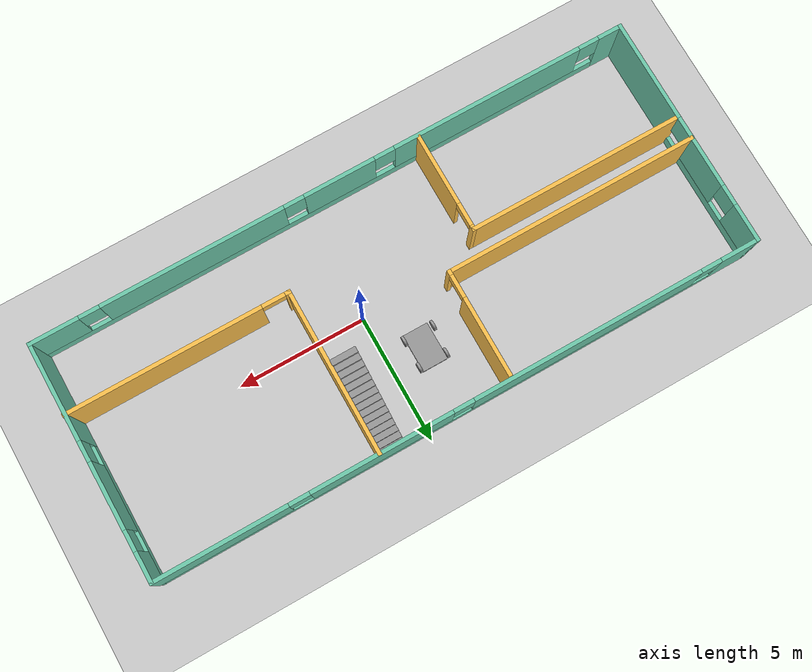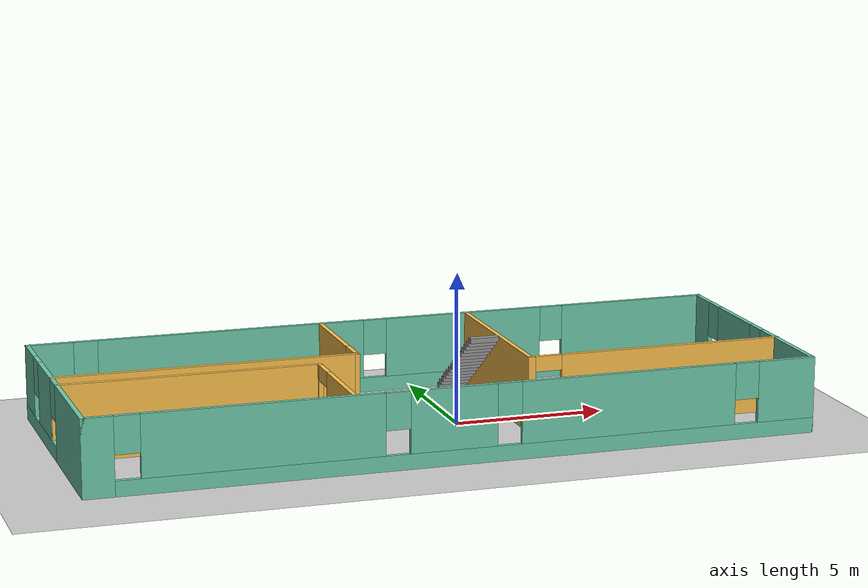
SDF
<sdf version="1.6">
 <world name="default">
  <model name="ground_plane">
   <static>1</static>
   <link name="link">
    <collision name="collision">
     <geometry><plane><normal>0 0 1</normal><size>100 100</size></plane></geometry>
     <surface>
      <contact><collide_bitmask>65535</collide_bitmask></contact>
      <friction><ode><mu>100</mu><mu2>50</mu2></ode></friction>
     </surface>
    </collision>
    <visual name="visual">
     <cast_shadows>0</cast_shadows>
     <geometry><plane><normal>0 0 1</normal><size>100 100</size></plane></geometry>
     <material>
      <script><uri>file://media/materials/scripts/gazebo.material</uri><name>Gazebo/Grey</name></script>
     </material>
    </visual>
   </link>
  </model>
  <model name="threeRooms">
   <pose>-1.29655 0.158694 0 0 -0 0</pose>
   <link name="Stairs_1">
    <visual name="Stairs_1_Visual_0">
     <pose>2.65595 4.34252 0.083333 0 -0 0</pose>
     <geometry><box><size>1 0.233333 0.166667</size></box></geometry>
     <material>
      <script><uri>file://media/materials/scripts/gazebo.material</uri><name>Gazebo/Grey</name></script>
      <ambient>1 1 1 1</ambient>
     </material>
     <meta><layer>0</layer></meta>
    </visual>
    <collision name="Stairs_1_Collision_0">
     <geometry><box><size>1 0.233333 0.166667</size></box></geometry>
     <pose>2.65595 4.34252 0.083333 0 -0 0</pose>
    </collision>
    <visual name="Stairs_1_Visual_1">
     <pose>2.65595 4.10918 0.25 0 -0 0</pose>
     <geometry><box><size>1 0.233333 0.166667</size></box></geometry>
     <material>
      <script><uri>file://media/materials/scripts/gazebo.material</uri><name>Gazebo/Grey</name></script>
      <ambient>1 1 1 1</ambient>
     </material>
     <meta><layer>0</layer></meta>
    </visual>
    <collision name="Stairs_1_Collision_1">
     <geometry><box><size>1 0.233333 0.166667</size></box></geometry>
     <pose>2.65595 4.10918 0.25 0 -0 0</pose>
    </collision>
    <visual name="Stairs_1_Visual_2">
     <pose>2.65595 3.87585 0.416667 0 -0 0</pose>
     <geometry><box><size>1 0.233333 0.166667</size></box></geometry>
     <material>
      <script><uri>file://media/materials/scripts/gazebo.material</uri><name>Gazebo/Grey</name></script>
      <ambient>1 1 1 1</ambient>
     </material>
     <meta><layer>0</layer></meta>
    </visual>
    <collision name="Stairs_1_Collision_2">
     <geometry><box><size>1 0.233333 0.166667</size></box></geometry>
     <pose>2.65595 3.87585 0.416667 0 -0 0</pose>
    </collision>
    <visual name="Stairs_1_Visual_3">
     <pose>2.65595 3.64252 0.583333 0 -0 0</pose>
     <geometry><box><size>1 0.233333 0.166667</size></box></geometry>
     <material>
      <script><uri>file://media/materials/scripts/gazebo.material</uri><name>Gazebo/Grey</name></script>
      <ambient>1 1 1 1</ambient>
     </material>
     <meta><layer>0</layer></meta>
    </visual>
    <collision name="Stairs_1_Collision_3">
     <geometry><box><size>1 0.233333 0.166667</size></box></geometry>
     <pose>2.65595 3.64252 0.583333 0 -0 0</pose>
    </collision>
    <visual name="Stairs_1_Visual_4">
     <pose>2.65595 3.40918 0.75 0 -0 0</pose>
     <geometry><box><size>1 0.233333 0.166667</size></box></geometry>
     <material>
      <script><uri>file://media/materials/scripts/gazebo.material</uri><name>Gazebo/Grey</name></script>
      <ambient>1 1 1 1</ambient>
     </material>
     <meta><layer>0</layer></meta>
    </visual>
    <collision name="Stairs_1_Collision_4">
     <geometry><box><size>1 0.233333 0.166667</size></box></geometry>
     <pose>2.65595 3.40918 0.75 0 -0 0</pose>
    </collision>
    <visual name="Stairs_1_Visual_5">
     <pose>2.65595 3.17585 0.916667 0 -0 0</pose>
     <geometry><box><size>1 0.233333 0.166667</size></box></geometry>
     <material>
      <script><uri>file://media/materials/scripts/gazebo.material</uri><name>Gazebo/Grey</name></script>
      <ambient>1 1 1 1</ambient>
     </material>
     <meta><layer>0</layer></meta>
    </visual>
    <collision name="Stairs_1_Collision_5">
     <geometry><box><size>1 0.233333 0.166667</size></box></geometry>
     <pose>2.65595 3.17585 0.916667 0 -0 0</pose>
    </collision>
    <visual name="Stairs_1_Visual_6">
     <pose>2.65595 2.94252 1.08333 0 -0 0</pose>
     <geometry><box><size>1 0.233333 0.166667</size></box></geometry>
     <material>
      <script><uri>file://media/materials/scripts/gazebo.material</uri><name>Gazebo/Grey</name></script>
      <ambient>1 1 1 1</ambient>
     </material>
     <meta><layer>0</layer></meta>
    </visual>
    <collision name="Stairs_1_Collision_6">
     <geometry><box><size>1 0.233333 0.166667</size></box></geometry>
     <pose>2.65595 2.94252 1.08333 0 -0 0</pose>
    </collision>
    <visual name="Stairs_1_Visual_7">
     <pose>2.65595 2.70918 1.25 0 -0 0</pose>
     <geometry><box><size>1 0.233333 0.166667</size></box></geometry>
     <material>
      <script><uri>file://media/materials/scripts/gazebo.material</uri><name>Gazebo/Grey</name></script>
      <ambient>1 1 1 1</ambient>
     </material>
     <meta><layer>0</layer></meta>
    </visual>
    <collision name="Stairs_1_Collision_7">
     <geometry><box><size>1 0.233333 0.166667</size></box></geometry>
     <pose>2.65595 2.70918 1.25 0 -0 0</pose>
    </collision>
    <visual name="Stairs_1_Visual_8">
     <pose>2.65595 2.47585 1.41667 0 -0 0</pose>
     <geometry><box><size>1 0.233333 0.166667</size></box></geometry>
     <material>
      <script><uri>file://media/materials/scripts/gazebo.material</uri><name>Gazebo/Grey</name></script>
      <ambient>1 1 1 1</ambient>
     </material>
     <meta><layer>0</layer></meta>
    </visual>
    <collision name="Stairs_1_Collision_8">
     <geometry><box><size>1 0.233333 0.166667</size></box></geometry>
     <pose>2.65595 2.47585 1.41667 0 -0 0</pose>
    </collision>
    <visual name="Stairs_1_Visual_9">
     <pose>2.65595 2.24252 1.58333 0 -0 0</pose>
     <geometry><box><size>1 0.233333 0.166667</size></box></geometry>
     <material>
      <script><uri>file://media/materials/scripts/gazebo.material</uri><name>Gazebo/Grey</name></script>
      <ambient>1 1 1 1</ambient>
     </material>
     <meta><layer>0</layer></meta>
    </visual>
    <collision name="Stairs_1_Collision_9">
     <geometry><box><size>1 0.233333 0.166667</size></box></geometry>
     <pose>2.65595 2.24252 1.58333 0 -0 0</pose>
    </collision>
    <visual name="Stairs_1_Visual_10">
     <pose>2.65595 2.00918 1.75 0 -0 0</pose>
     <geometry><box><size>1 0.233333 0.166667</size></box></geometry>
     <material>
      <script><uri>file://media/materials/scripts/gazebo.material</uri><name>Gazebo/Grey</name></script>
      <ambient>1 1 1 1</ambient>
     </material>
     <meta><layer>0</layer></meta>
    </visual>
    <collision name="Stairs_1_Collision_10">
     <geometry><box><size>1 0.233333 0.166667</size></box></geometry>
     <pose>2.65595 2.00918 1.75 0 -0 0</pose>
    </collision>
    <visual name="Stairs_1_Visual_11">
     <pose>2.65595 1.77585 1.91667 0 -0 0</pose>
     <geometry><box><size>1 0.233333 0.166667</size></box></geometry>
     <material>
      <script><uri>file://media/materials/scripts/gazebo.material</uri><name>Gazebo/Grey</name></script>
      <ambient>1 1 1 1</ambient>
     </material>
     <meta><layer>0</layer></meta>
    </visual>
    <collision name="Stairs_1_Collision_11">
     <geometry><box><size>1 0.233333 0.166667</size></box></geometry>
     <pose>2.65595 1.77585 1.91667 0 -0 0</pose>
    </collision>
    <visual name="Stairs_1_Visual_12">
     <pose>2.65595 1.54252 2.08333 0 -0 0</pose>
     <geometry><box><size>1 0.233333 0.166667</size></box></geometry>
     <material>
      <script><uri>file://media/materials/scripts/gazebo.material</uri><name>Gazebo/Grey</name></script>
      <ambient>1 1 1 1</ambient>
     </material>
     <meta><layer>0</layer></meta>
    </visual>
    <collision name="Stairs_1_Collision_12">
     <geometry><box><size>1 0.233333 0.166667</size></box></geometry>
     <pose>2.65595 1.54252 2.08333 0 -0 0</pose>
    </collision>
    <visual name="Stairs_1_Visual_13">
     <pose>2.65595 1.30918 2.25 0 -0 0</pose>
     <geometry><box><size>1 0.233333 0.166667</size></box></geometry>
     <material>
      <script><uri>file://media/materials/scripts/gazebo.material</uri><name>Gazebo/Grey</name></script>
      <ambient>1 1 1 1</ambient>
     </material>
     <meta><layer>0</layer></meta>
    </visual>
    <collision name="Stairs_1_Collision_13">
     <geometry><box><size>1 0.233333 0.166667</size></box></geometry>
     <pose>2.65595 1.30918 2.25 0 -0 0</pose>
    </collision>
    <visual name="Stairs_1_Visual_14">
     <pose>2.65595 1.07585 2.41667 0 -0 0</pose>
     <geometry><box><size>1 0.233333 0.166667</size></box></geometry>
     <material>
      <script><uri>file://media/materials/scripts/gazebo.material</uri><name>Gazebo/Grey</name></script>
      <ambient>1 1 1 1</ambient>
     </material>
     <meta><layer>0</layer></meta>
    </visual>
    <collision name="Stairs_1_Collision_14">
     <geometry><box><size>1 0.233333 0.166667</size></box></geometry>
     <pose>2.65595 1.07585 2.41667 0 -0 0</pose>
    </collision>
   </link>
   <link name="Wall_40">
    <pose>-0.014556 -4.55 0 0 -0 0</pose>
    <visual name="Wall_40_Visual_0">
     <pose>-11.3725 0 1.25 0 -0 0</pose>
     <geometry><box><size>1.00501 0.15 2.5</size></box></geometry>
     <material>
      <script><uri>file://media/materials/scripts/gazebo.material</uri><name>Gazebo/Grey</name></script>
      <ambient>0.435294 0.796078 0.67451 1</ambient>
     </material>
     <meta><layer>0</layer></meta>
    </visual>
    <collision name="Wall_40_Collision_0">
     <geometry><box><size>1.00501 0.15 2.5</size></box></geometry>
     <pose>-11.3725 0 1.25 0 -0 0</pose>
    </collision>
    <visual name="Wall_40_Visual_1">
     <pose>0.502505 0 0.25 0 -0 0</pose>
     <geometry><box><size>22.745 0.15 0.5</size></box></geometry>
     <material>
      <script><uri>file://media/materials/scripts/gazebo.material</uri><name>Gazebo/Grey</name></script>
      <ambient>0.435294 0.796078 0.67451 1</ambient>
     </material>
     <meta><layer>0</layer></meta>
    </visual>
    <collision name="Wall_40_Collision_1">
     <geometry><box><size>22.745 0.15 0.5</size></box></geometry>
     <pose>0.502505 0 0.25 0 -0 0</pose>
    </collision>
    <visual name="Wall_40_Visual_2">
     <pose>-6.26716 0 1.5 0 -0 0</pose>
     <geometry><box><size>7.60566 0.15 2</size></box></geometry>
     <material>
      <script><uri>file://media/materials/scripts/gazebo.material</uri><name>Gazebo/Grey</name></script>
      <ambient>0.435294 0.796078 0.67451 1</ambient>
     </material>
     <meta><layer>0</layer></meta>
    </visual>
    <collision name="Wall_40_Collision_2">
     <geometry><box><size>7.60566 0.15 2</size></box></geometry>
     <pose>-6.26716 0 1.5 0 -0 0</pose>
    </collision>
    <visual name="Wall_40_Visual_3">
     <pose>-0.255514 0 1.5 0 -0 0</pose>
     <geometry><box><size>2.81763 0.15 2</size></box></geometry>
     <material>
      <script><uri>file://media/materials/scripts/gazebo.material</uri><name>Gazebo/Grey</name></script>
      <ambient>0.435294 0.796078 0.67451 1</ambient>
     </material>
     <meta><layer>0</layer></meta>
    </visual>
    <collision name="Wall_40_Collision_3">
     <geometry><box><size>2.81763 0.15 2</size></box></geometry>
     <pose>-0.255514 0 1.5 0 -0 0</pose>
    </collision>
    <visual name="Wall_40_Visual_4">
     <pose>5.54333 0 1.5 0 -0 0</pose>
     <geometry><box><size>7.18006 0.15 2</size></box></geometry>
     <material>
      <script><uri>file://media/materials/scripts/gazebo.material</uri><name>Gazebo/Grey</name></script>
      <ambient>0.435294 0.796078 0.67451 1</ambient>
     </material>
     <meta><layer>0</layer></meta>
    </visual>
    <collision name="Wall_40_Collision_4">
     <geometry><box><size>7.18006 0.15 2</size></box></geometry>
     <pose>5.54333 0 1.5 0 -0 0</pose>
    </collision>
    <visual name="Wall_40_Visual_5">
     <pose>10.9042 0 1.5 0 -0 0</pose>
     <geometry><box><size>1.94164 0.15 2</size></box></geometry>
     <material>
      <script><uri>file://media/materials/scripts/gazebo.material</uri><name>Gazebo/Grey</name></script>
      <ambient>0.435294 0.796078 0.67451 1</ambient>
     </material>
     <meta><layer>0</layer></meta>
    </visual>
    <collision name="Wall_40_Collision_5">
     <geometry><box><size>1.94164 0.15 2</size></box></geometry>
     <pose>10.9042 0 1.5 0 -0 0</pose>
    </collision>
    <visual name="Wall_40_Visual_6">
     <pose>-10.47 0 1.9 0 -0 0</pose>
     <geometry><box><size>0.8 0.15 1.2</size></box></geometry>
     <material>
      <script><uri>file://media/materials/scripts/gazebo.material</uri><name>Gazebo/Grey</name></script>
      <ambient>0.435294 0.796078 0.67451 1</ambient>
     </material>
     <meta><layer>0</layer></meta>
    </visual>
    <collision name="Wall_40_Collision_6">
     <geometry><box><size>0.8 0.15 1.2</size></box></geometry>
     <pose>-10.47 0 1.9 0 -0 0</pose>
    </collision>
    <visual name="Wall_40_Visual_7">
     <pose>-2.06433 0 1.9 0 -0 0</pose>
     <geometry><box><size>0.8 0.15 1.2</size></box></geometry>
     <material>
      <script><uri>file://media/materials/scripts/gazebo.material</uri><name>Gazebo/Grey</name></script>
      <ambient>0.435294 0.796078 0.67451 1</ambient>
     </material>
     <meta><layer>0</layer></meta>
    </visual>
    <collision name="Wall_40_Collision_7">
     <geometry><box><size>0.8 0.15 1.2</size></box></geometry>
     <pose>-2.06433 0 1.9 0 -0 0</pose>
    </collision>
    <visual name="Wall_40_Visual_8">
     <pose>1.5533 0 1.9 0 -0 0</pose>
     <geometry><box><size>0.8 0.15 1.2</size></box></geometry>
     <material>
      <script><uri>file://media/materials/scripts/gazebo.material</uri><name>Gazebo/Grey</name></script>
      <ambient>0.435294 0.796078 0.67451 1</ambient>
     </material>
     <meta><layer>0</layer></meta>
    </visual>
    <collision name="Wall_40_Collision_8">
     <geometry><box><size>0.8 0.15 1.2</size></box></geometry>
     <pose>1.5533 0 1.9 0 -0 0</pose>
    </collision>
    <visual name="Wall_40_Visual_9">
     <pose>9.53336 0 1.9 0 -0 0</pose>
     <geometry><box><size>0.8 0.15 1.2</size></box></geometry>
     <material>
      <script><uri>file://media/materials/scripts/gazebo.material</uri><name>Gazebo/Grey</name></script>
      <ambient>0.435294 0.796078 0.67451 1</ambient>
     </material>
     <meta><layer>0</layer></meta>
    </visual>
    <collision name="Wall_40_Collision_9">
     <geometry><box><size>0.8 0.15 1.2</size></box></geometry>
     <pose>9.53336 0 1.9 0 -0 0</pose>
    </collision>
   </link>
   <link name="Wall_41">
    <pose>11.7854 -0 0 0 -0 1.5708</pose>
    <visual name="Wall_41_Visual_0">
     <pose>-2.70072 0 1.25 0 -0 0</pose>
     <geometry><box><size>3.84856 0.15 2.5</size></box></geometry>
     <material>
      <script><uri>file://media/materials/scripts/gazebo.material</uri><name>Gazebo/Grey</name></script>
      <ambient>0.435294 0.796078 0.67451 1</ambient>
     </material>
     <meta><layer>0</layer></meta>
    </visual>
    <collision name="Wall_41_Collision_0">
     <geometry><box><size>3.84856 0.15 2.5</size></box></geometry>
     <pose>-2.70072 0 1.25 0 -0 0</pose>
    </collision>
    <visual name="Wall_41_Visual_1">
     <pose>1.92428 0 0.25 0 -0 0</pose>
     <geometry><box><size>5.40144 0.15 0.5</size></box></geometry>
     <material>
      <script><uri>file://media/materials/scripts/gazebo.material</uri><name>Gazebo/Grey</name></script>
      <ambient>0.435294 0.796078 0.67451 1</ambient>
     </material>
     <meta><layer>0</layer></meta>
    </visual>
    <collision name="Wall_41_Collision_1">
     <geometry><box><size>5.40144 0.15 0.5</size></box></geometry>
     <pose>1.92428 0 0.25 0 -0 0</pose>
    </collision>
    <visual name="Wall_41_Visual_2">
     <pose>1.31267 0 1.5 0 -0 0</pose>
     <geometry><box><size>2.57823 0.15 2</size></box></geometry>
     <material>
      <script><uri>file://media/materials/scripts/gazebo.material</uri><name>Gazebo/Grey</name></script>
      <ambient>0.435294 0.796078 0.67451 1</ambient>
     </material>
     <meta><layer>0</layer></meta>
    </visual>
    <collision name="Wall_41_Collision_2">
     <geometry><box><size>2.57823 0.15 2</size></box></geometry>
     <pose>1.31267 0 1.5 0 -0 0</pose>
    </collision>
    <visual name="Wall_41_Visual_3">
     <pose>4.01339 0 1.5 0 -0 0</pose>
     <geometry><box><size>1.22321 0.15 2</size></box></geometry>
     <material>
      <script><uri>file://media/materials/scripts/gazebo.material</uri><name>Gazebo/Grey</name></script>
      <ambient>0.435294 0.796078 0.67451 1</ambient>
     </material>
     <meta><layer>0</layer></meta>
    </visual>
    <collision name="Wall_41_Collision_3">
     <geometry><box><size>1.22321 0.15 2</size></box></geometry>
     <pose>4.01339 0 1.5 0 -0 0</pose>
    </collision>
    <visual name="Wall_41_Visual_4">
     <pose>-0.376441 0 1.9 0 -0 0</pose>
     <geometry><box><size>0.8 0.15 1.2</size></box></geometry>
     <material>
      <script><uri>file://media/materials/scripts/gazebo.material</uri><name>Gazebo/Grey</name></script>
      <ambient>0.435294 0.796078 0.67451 1</ambient>
     </material>
     <meta><layer>0</layer></meta>
    </visual>
    <collision name="Wall_41_Collision_4">
     <geometry><box><size>0.8 0.15 1.2</size></box></geometry>
     <pose>-0.376441 0 1.9 0 -0 0</pose>
    </collision>
    <visual name="Wall_41_Visual_5">
     <pose>3.00178 0 1.9 0 -0 0</pose>
     <geometry><box><size>0.8 0.15 1.2</size></box></geometry>
     <material>
      <script><uri>file://media/materials/scripts/gazebo.material</uri><name>Gazebo/Grey</name></script>
      <ambient>0.435294 0.796078 0.67451 1</ambient>
     </material>
     <meta><layer>0</layer></meta>
    </visual>
    <collision name="Wall_41_Collision_5">
     <geometry><box><size>0.8 0.15 1.2</size></box></geometry>
     <pose>3.00178 0 1.9 0 -0 0</pose>
    </collision>
   </link>
   <link name="Wall_44">
    <pose>-11.8146 -0 0 0 -0 1.5708</pose>
    <visual name="Wall_44_Visual_0">
     <pose>-2.59432 0 1.25 0 -0 0</pose>
     <geometry><box><size>4.06136 0.15 2.5</size></box></geometry>
     <material>
      <script><uri>file://media/materials/scripts/gazebo.material</uri><name>Gazebo/Grey</name></script>
      <ambient>0.435294 0.796078 0.67451 1</ambient>
     </material>
     <meta><layer>0</layer></meta>
    </visual>
    <collision name="Wall_44_Collision_0">
     <geometry><box><size>4.06136 0.15 2.5</size></box></geometry>
     <pose>-2.59432 0 1.25 0 -0 0</pose>
    </collision>
    <visual name="Wall_44_Visual_1">
     <pose>2.03068 0 0.25 0 -0 0</pose>
     <geometry><box><size>5.18864 0.15 0.5</size></box></geometry>
     <material>
      <script><uri>file://media/materials/scripts/gazebo.material</uri><name>Gazebo/Grey</name></script>
      <ambient>0.435294 0.796078 0.67451 1</ambient>
     </material>
     <meta><layer>0</layer></meta>
    </visual>
    <collision name="Wall_44_Collision_1">
     <geometry><box><size>5.18864 0.15 0.5</size></box></geometry>
     <pose>2.03068 0 0.25 0 -0 0</pose>
    </collision>
    <visual name="Wall_44_Visual_2">
     <pose>1.27277 0 1.5 0 -0 0</pose>
     <geometry><box><size>2.07282 0.15 2</size></box></geometry>
     <material>
      <script><uri>file://media/materials/scripts/gazebo.material</uri><name>Gazebo/Grey</name></script>
      <ambient>0.435294 0.796078 0.67451 1</ambient>
     </material>
     <meta><layer>0</layer></meta>
    </visual>
    <collision name="Wall_44_Collision_2">
     <geometry><box><size>2.07282 0.15 2</size></box></geometry>
     <pose>1.27277 0 1.5 0 -0 0</pose>
    </collision>
    <visual name="Wall_44_Visual_3">
     <pose>3.86709 0 1.5 0 -0 0</pose>
     <geometry><box><size>1.51582 0.15 2</size></box></geometry>
     <material>
      <script><uri>file://media/materials/scripts/gazebo.material</uri><name>Gazebo/Grey</name></script>
      <ambient>0.435294 0.796078 0.67451 1</ambient>
     </material>
     <meta><layer>0</layer></meta>
    </visual>
    <collision name="Wall_44_Collision_3">
     <geometry><box><size>1.51582 0.15 2</size></box></geometry>
     <pose>3.86709 0 1.5 0 -0 0</pose>
    </collision>
    <visual name="Wall_44_Visual_4">
     <pose>-0.163639 0 1.9 0 -0 0</pose>
     <geometry><box><size>0.8 0.15 1.2</size></box></geometry>
     <material>
      <script><uri>file://media/materials/scripts/gazebo.material</uri><name>Gazebo/Grey</name></script>
      <ambient>0.435294 0.796078 0.67451 1</ambient>
     </material>
     <meta><layer>0</layer></meta>
    </visual>
    <collision name="Wall_44_Collision_4">
     <geometry><box><size>0.8 0.15 1.2</size></box></geometry>
     <pose>-0.163639 0 1.9 0 -0 0</pose>
    </collision>
    <visual name="Wall_44_Visual_5">
     <pose>2.70918 0 1.9 0 -0 0</pose>
     <geometry><box><size>0.8 0.15 1.2</size></box></geometry>
     <material>
      <script><uri>file://media/materials/scripts/gazebo.material</uri><name>Gazebo/Grey</name></script>
      <ambient>0.435294 0.796078 0.67451 1</ambient>
     </material>
     <meta><layer>0</layer></meta>
    </visual>
    <collision name="Wall_44_Collision_5">
     <geometry><box><size>0.8 0.15 1.2</size></box></geometry>
     <pose>2.70918 0 1.9 0 -0 0</pose>
    </collision>
   </link>
   <link name="Wall_45">
    <pose>-0.014556 4.55 0 0 -0 0</pose>
    <visual name="Wall_45_Visual_0">
     <pose>-11.0932 0 1.25 0 -0 0</pose>
     <geometry><box><size>1.56361 0.15 2.5</size></box></geometry>
     <material>
      <script><uri>file://media/materials/scripts/gazebo.material</uri><name>Gazebo/Grey</name></script>
      <ambient>0.435294 0.796078 0.67451 1</ambient>
     </material>
     <meta><layer>0</layer></meta>
    </visual>
    <collision name="Wall_45_Collision_0">
     <geometry><box><size>1.56361 0.15 2.5</size></box></geometry>
     <pose>-11.0932 0 1.25 0 -0 0</pose>
    </collision>
    <visual name="Wall_45_Visual_1">
     <pose>0.781807 0 0.25 0 -0 0</pose>
     <geometry><box><size>22.1864 0.15 0.5</size></box></geometry>
     <material>
      <script><uri>file://media/materials/scripts/gazebo.material</uri><name>Gazebo/Grey</name></script>
      <ambient>0.435294 0.796078 0.67451 1</ambient>
     </material>
     <meta><layer>0</layer></meta>
    </visual>
    <collision name="Wall_45_Collision_1">
     <geometry><box><size>22.1864 0.15 0.5</size></box></geometry>
     <pose>0.781807 0 0.25 0 -0 0</pose>
    </collision>
    <visual name="Wall_45_Visual_2">
     <pose>-4.97705 0 1.5 0 -0 0</pose>
     <geometry><box><size>9.06867 0.15 2</size></box></geometry>
     <material>
      <script><uri>file://media/materials/scripts/gazebo.material</uri><name>Gazebo/Grey</name></script>
      <ambient>0.435294 0.796078 0.67451 1</ambient>
     </material>
     <meta><layer>0</layer></meta>
    </visual>
    <collision name="Wall_45_Collision_2">
     <geometry><box><size>9.06867 0.15 2</size></box></geometry>
     <pose>-4.97705 0 1.5 0 -0 0</pose>
    </collision>
    <visual name="Wall_45_Visual_3">
     <pose>3.12271 0 1.5 0 -0 0</pose>
     <geometry><box><size>5.53085 0.15 2</size></box></geometry>
     <material>
      <script><uri>file://media/materials/scripts/gazebo.material</uri><name>Gazebo/Grey</name></script>
      <ambient>0.435294 0.796078 0.67451 1</ambient>
     </material>
     <meta><layer>0</layer></meta>
    </visual>
    <collision name="Wall_45_Collision_3">
     <geometry><box><size>5.53085 0.15 2</size></box></geometry>
     <pose>3.12271 0 1.5 0 -0 0</pose>
    </collision>
    <visual name="Wall_45_Visual_4">
     <pose>9.28157 0 1.5 0 -0 0</pose>
     <geometry><box><size>5.18687 0.15 2</size></box></geometry>
     <material>
      <script><uri>file://media/materials/scripts/gazebo.material</uri><name>Gazebo/Grey</name></script>
      <ambient>0.435294 0.796078 0.67451 1</ambient>
     </material>
     <meta><layer>0</layer></meta>
    </visual>
    <collision name="Wall_45_Collision_4">
     <geometry><box><size>5.18687 0.15 2</size></box></geometry>
     <pose>9.28157 0 1.5 0 -0 0</pose>
    </collision>
    <visual name="Wall_45_Visual_5">
     <pose>-9.91139 0 1.9 0 -0 0</pose>
     <geometry><box><size>0.8 0.15 1.2</size></box></geometry>
     <material>
      <script><uri>file://media/materials/scripts/gazebo.material</uri><name>Gazebo/Grey</name></script>
      <ambient>0.435294 0.796078 0.67451 1</ambient>
     </material>
     <meta><layer>0</layer></meta>
    </visual>
    <collision name="Wall_45_Collision_5">
     <geometry><box><size>0.8 0.15 1.2</size></box></geometry>
     <pose>-9.91139 0 1.9 0 -0 0</pose>
    </collision>
    <visual name="Wall_45_Visual_6">
     <pose>-0.042712 0 1.9 0 -0 0</pose>
     <geometry><box><size>0.8 0.15 1.2</size></box></geometry>
     <material>
      <script><uri>file://media/materials/scripts/gazebo.material</uri><name>Gazebo/Grey</name></script>
      <ambient>0.435294 0.796078 0.67451 1</ambient>
     </material>
     <meta><layer>0</layer></meta>
    </visual>
    <collision name="Wall_45_Collision_6">
     <geometry><box><size>0.8 0.15 1.2</size></box></geometry>
     <pose>-0.042712 0 1.9 0 -0 0</pose>
    </collision>
    <visual name="Wall_45_Visual_7">
     <pose>6.28813 0 1.9 0 -0 0</pose>
     <geometry><box><size>0.8 0.15 1.2</size></box></geometry>
     <material>
      <script><uri>file://media/materials/scripts/gazebo.material</uri><name>Gazebo/Grey</name></script>
      <ambient>0.435294 0.796078 0.67451 1</ambient>
     </material>
     <meta><layer>0</layer></meta>
    </visual>
    <collision name="Wall_45_Collision_7">
     <geometry><box><size>0.8 0.15 1.2</size></box></geometry>
     <pose>6.28813 0 1.9 0 -0 0</pose>
    </collision>
   </link>
   <link name="Wall_47">
    <collision name="Wall_47_Collision">
     <geometry><box><size>10 0.15 2.5</size></box></geometry>
     <pose>0 0 1.25 0 -0 0</pose>
    </collision>
    <visual name="Wall_47_Visual">
     <pose>0 0 1.25 0 -0 0</pose>
     <geometry><box><size>10 0.15 2.5</size></box></geometry>
     <material>
      <script><uri>file://media/materials/scripts/gazebo.material</uri><name>Gazebo/Grey</name></script>
      <ambient>1 0.764706 0.305882 1</ambient>
     </material>
     <meta><layer>0</layer></meta>
    </visual>
    <pose>-6.86296 0.288564 0 0 -0 0</pose>
   </link>
   <link name="Wall_48">
    <pose>-1.93796 2.33856 0 0 -0 1.5708</pose>
    <visual name="Wall_48_Visual_0">
     <pose>-2.0199 0 1.25 0 -0 0</pose>
     <geometry><box><size>0.210204 0.15 2.5</size></box></geometry>
     <material>
      <script><uri>file://media/materials/scripts/gazebo.material</uri><name>Gazebo/Grey</name></script>
      <ambient>1 0.764706 0.305882 1</ambient>
     </material>
     <meta><layer>0</layer></meta>
    </visual>
    <collision name="Wall_48_Collision_0">
     <geometry><box><size>0.210204 0.15 2.5</size></box></geometry>
     <pose>-2.0199 0 1.25 0 -0 0</pose>
    </collision>
    <visual name="Wall_48_Visual_1">
     <pose>0.555102 0 1.25 0 -0 0</pose>
     <geometry><box><size>3.1398 0.15 2.5</size></box></geometry>
     <material>
      <script><uri>file://media/materials/scripts/gazebo.material</uri><name>Gazebo/Grey</name></script>
      <ambient>1 0.764706 0.305882 1</ambient>
     </material>
     <meta><layer>0</layer></meta>
    </visual>
    <collision name="Wall_48_Collision_1">
     <geometry><box><size>3.1398 0.15 2.5</size></box></geometry>
     <pose>0.555102 0 1.25 0 -0 0</pose>
    </collision>
    <visual name="Wall_48_Visual_2">
     <pose>-1.4648 0 2.25 0 -0 0</pose>
     <geometry><box><size>0.9 0.15 0.5</size></box></geometry>
     <material>
      <script><uri>file://media/materials/scripts/gazebo.material</uri><name>Gazebo/Grey</name></script>
      <ambient>1 0.764706 0.305882 1</ambient>
     </material>
     <meta><layer>0</layer></meta>
    </visual>
    <collision name="Wall_48_Collision_2">
     <geometry><box><size>0.9 0.15 0.5</size></box></geometry>
     <pose>-1.4648 0 2.25 0 -0 0</pose>
    </collision>
   </link>
   <link name="Wall_50">
    <collision name="Wall_50_Collision">
     <geometry><box><size>8.5 0.15 2.5</size></box></geometry>
     <pose>0 0 1.25 0 -0 0</pose>
    </collision>
    <visual name="Wall_50_Visual">
     <pose>0 0 1.25 0 -0 0</pose>
     <geometry><box><size>8.5 0.15 2.5</size></box></geometry>
     <material>
      <script><uri>file://media/materials/scripts/gazebo.material</uri><name>Gazebo/Grey</name></script>
      <ambient>1 0.764706 0.305882 1</ambient>
     </material>
     <meta><layer>0</layer></meta>
    </visual>
    <pose>-7.61296 -0.615843 0 0 -0 0</pose>
   </link>
   <link name="Wall_51">
    <pose>-3.43796 -2.54084 0 0 -0 -1.5708</pose>
    <visual name="Wall_51_Visual_0">
     <pose>-1.8816 0 1.25 0 -0 0</pose>
     <geometry><box><size>0.236805 0.15 2.5</size></box></geometry>
     <material>
      <script><uri>file://media/materials/scripts/gazebo.material</uri><name>Gazebo/Grey</name></script>
      <ambient>1 0.764706 0.305882 1</ambient>
     </material>
     <meta><layer>0</layer></meta>
    </visual>
    <collision name="Wall_51_Collision_0">
     <geometry><box><size>0.236805 0.15 2.5</size></box></geometry>
     <pose>-1.8816 0 1.25 0 -0 0</pose>
    </collision>
    <visual name="Wall_51_Visual_1">
     <pose>0.568402 0 1.25 0 -0 0</pose>
     <geometry><box><size>2.8632 0.15 2.5</size></box></geometry>
     <material>
      <script><uri>file://media/materials/scripts/gazebo.material</uri><name>Gazebo/Grey</name></script>
      <ambient>1 0.764706 0.305882 1</ambient>
     </material>
     <meta><layer>0</layer></meta>
    </visual>
    <collision name="Wall_51_Collision_1">
     <geometry><box><size>2.8632 0.15 2.5</size></box></geometry>
     <pose>0.568402 0 1.25 0 -0 0</pose>
    </collision>
    <visual name="Wall_51_Visual_2">
     <pose>-1.31319 0 2.25 0 -0 0</pose>
     <geometry><box><size>0.9 0.15 0.5</size></box></geometry>
     <material>
      <script><uri>file://media/materials/scripts/gazebo.material</uri><name>Gazebo/Grey</name></script>
      <ambient>1 0.764706 0.305882 1</ambient>
     </material>
     <meta><layer>0</layer></meta>
    </visual>
    <collision name="Wall_51_Collision_2">
     <geometry><box><size>0.9 0.15 0.5</size></box></geometry>
     <pose>-1.31319 0 2.25 0 -0 0</pose>
    </collision>
   </link>
   <link name="Wall_53">
    <collision name="Wall_53_Collision">
     <geometry><box><size>6.5 0.15 2.5</size></box></geometry>
     <pose>0 0 1.25 0 -0 0</pose>
    </collision>
    <visual name="Wall_53_Visual">
     <pose>0 0 1.25 0 -0 0</pose>
     <geometry><box><size>6.5 0.15 2.5</size></box></geometry>
     <material>
      <script><uri>file://media/materials/scripts/gazebo.material</uri><name>Gazebo/Grey</name></script>
      <ambient>1 0.764706 0.305882 1</ambient>
     </material>
     <meta><layer>0</layer></meta>
    </visual>
    <pose>3.21456 1.3696 0 0 -0 -1.5708</pose>
   </link>
   <link name="Wall_56">
    <pose>7.51456 -1.8054 0 0 -0 0</pose>
    <visual name="Wall_56_Visual_0">
     <pose>-4.2566 0 1.25 0 -0 0</pose>
     <geometry><box><size>0.236805 0.15 2.5</size></box></geometry>
     <material>
      <script><uri>file://media/materials/scripts/gazebo.material</uri><name>Gazebo/Grey</name></script>
      <ambient>1 0.764706 0.305882 1</ambient>
     </material>
     <meta><layer>0</layer></meta>
    </visual>
    <collision name="Wall_56_Collision_0">
     <geometry><box><size>0.236805 0.15 2.5</size></box></geometry>
     <pose>-4.2566 0 1.25 0 -0 0</pose>
    </collision>
    <visual name="Wall_56_Visual_1">
     <pose>0.568402 0 1.25 0 -0 0</pose>
     <geometry><box><size>7.6132 0.15 2.5</size></box></geometry>
     <material>
      <script><uri>file://media/materials/scripts/gazebo.material</uri><name>Gazebo/Grey</name></script>
      <ambient>1 0.764706 0.305882 1</ambient>
     </material>
     <meta><layer>0</layer></meta>
    </visual>
    <collision name="Wall_56_Collision_1">
     <geometry><box><size>7.6132 0.15 2.5</size></box></geometry>
     <pose>0.568402 0 1.25 0 -0 0</pose>
    </collision>
    <visual name="Wall_56_Visual_2">
     <pose>-3.68819 0 2.25 0 -0 0</pose>
     <geometry><box><size>0.9 0.15 0.5</size></box></geometry>
     <material>
      <script><uri>file://media/materials/scripts/gazebo.material</uri><name>Gazebo/Grey</name></script>
      <ambient>1 0.764706 0.305882 1</ambient>
     </material>
     <meta><layer>0</layer></meta>
    </visual>
    <collision name="Wall_56_Collision_2">
     <geometry><box><size>0.9 0.15 0.5</size></box></geometry>
     <pose>-3.68819 0 2.25 0 -0 0</pose>
    </collision>
   </link>
   <static>1</static>
  </model>
  <model name="myBOt">
   <link name="link_0">
    <inertial>
     <mass>1</mass>
     <inertia><ixx>0.145833</ixx><ixy>0</ixy><ixz>0</ixz><iyy>0.145833</iyy><iyz>0</iyz><izz>0.125</izz></inertia>
    </inertial>
    <pose>-0.360453 0.261698 0.045 0 -0 0</pose>
    <visual name="visual">
     <pose>0 0 0 0 1.57 0</pose>
     <geometry><cylinder><radius>0.2</radius><length>0.1</length></cylinder></geometry>
     <material>
      <lighting>1</lighting>
      <script><uri>file://media/materials/scripts/gazebo.material</uri><name>Gazebo/Grey</name></script>
      <shader type="vertex"><normal_map>__default__</normal_map></shader>
      <ambient>0.3 0.3 0.3 1</ambient>
      <diffuse>0.7 0.7 0.7 1</diffuse>
      <specular>0.01 0.01 0.01 1</specular>
      <emissive>0 0 0 1</emissive>
     </material>
    </visual>
    <collision name="collision">
     <pose>0 0 0 0 1.57 0</pose>
     <geometry><cylinder><radius>0.2</radius><length>0.1</length></cylinder></geometry>
     <surface>
      <friction>
       <ode><mu>1</mu><mu2>1</mu2><fdir1>0 0 0</fdir1><slip1>0</slip1><slip2>0</slip2></ode>
       <torsional>
        <coefficient>1</coefficient>
        <patch_radius>0</patch_radius>
        <surface_radius>0</surface_radius>
        <use_patch_radius>1</use_patch_radius>
        <ode><slip>0</slip></ode>
       </torsional>
      </friction>
      <bounce><restitution_coefficient>0</restitution_coefficient><threshold>1e+06</threshold></bounce>
      <contact>
       <collide_without_contact>0</collide_without_contact>
       <collide_without_contact_bitmask>1</collide_without_contact_bitmask>
       <collide_bitmask>1</collide_bitmask>
       <ode>
        <soft_cfm>0</soft_cfm>
        <soft_erp>0.2</soft_erp>
        <kp>1e+13</kp>
        <kd>1</kd>
        <max_vel>0.01</max_vel>
        <min_depth>0</min_depth>
       </ode>
       <bullet>
        <split_impulse>1</split_impulse>
        <split_impulse_penetration_threshold>-0.01</split_impulse_penetration_threshold>
        <soft_cfm>0</soft_cfm>
        <soft_erp>0.2</soft_erp>
        <kp>1e+13</kp>
        <kd>1</kd>
       </bullet>
      </contact>
     </surface>
    </collision>
   </link>
   <link name="link_0_clone">
    <inertial>
     <mass>1</mass>
     <inertia><ixx>0.145833</ixx><ixy>0</ixy><ixz>0</ixz><iyy>0.145833</iyy><iyz>0</iyz><izz>0.125</izz></inertia>
    </inertial>
    <pose>-0.270612 1.3617 0.045 0 -0 0</pose>
    <visual name="visual">
     <pose>0 0 0 0 1.57 0</pose>
     <geometry><cylinder><radius>0.2</radius><length>0.1</length></cylinder></geometry>
     <material>
      <lighting>1</lighting>
      <script><uri>file://media/materials/scripts/gazebo.material</uri><name>Gazebo/Grey</name></script>
      <shader type="vertex"><normal_map>__default__</normal_map></shader>
      <ambient>0.3 0.3 0.3 1</ambient>
      <diffuse>0.7 0.7 0.7 1</diffuse>
      <specular>0.01 0.01 0.01 1</specular>
      <emissive>0 0 0 1</emissive>
     </material>
    </visual>
    <collision name="collision">
     <pose>0 0 0 0 1.57 0</pose>
     <geometry><cylinder><radius>0.2</radius><length>0.1</length></cylinder></geometry>
     <surface>
      <friction>
       <ode><mu>1</mu><mu2>1</mu2><fdir1>0 0 0</fdir1><slip1>0</slip1><slip2>0</slip2></ode>
       <torsional>
        <coefficient>1</coefficient>
        <patch_radius>0</patch_radius>
        <surface_radius>0</surface_radius>
        <use_patch_radius>1</use_patch_radius>
        <ode><slip>0</slip></ode>
       </torsional>
      </friction>
      <bounce><restitution_coefficient>0</restitution_coefficient><threshold>1e+06</threshold></bounce>
      <contact>
       <collide_without_contact>0</collide_without_contact>
       <collide_without_contact_bitmask>1</collide_without_contact_bitmask>
       <collide_bitmask>1</collide_bitmask>
       <ode>
        <soft_cfm>0</soft_cfm>
        <soft_erp>0.2</soft_erp>
        <kp>1e+13</kp>
        <kd>1</kd>
        <max_vel>0.01</max_vel>
        <min_depth>0</min_depth>
       </ode>
       <bullet>
        <split_impulse>1</split_impulse>
        <split_impulse_penetration_threshold>-0.01</split_impulse_penetration_threshold>
        <soft_cfm>0</soft_cfm>
        <soft_erp>0.2</soft_erp>
        <kp>1e+13</kp>
        <kd>1</kd>
       </bullet>
      </contact>
     </surface>
    </collision>
   </link>
   <link name="link_0_clone_clone">
    <inertial>
     <mass>1</mass>
     <inertia><ixx>0.145833</ixx><ixy>0</ixy><ixz>0</ixz><iyy>0.145833</iyy><iyz>0</iyz><izz>0.125</izz></inertia>
    </inertial>
    <pose>0.829706 1.3617 0.045 0 -0 0</pose>
    <visual name="visual">
     <pose>0 0 0 0 1.57 0</pose>
     <geometry><cylinder><radius>0.2</radius><length>0.1</length></cylinder></geometry>
     <material>
      <lighting>1</lighting>
      <script><uri>file://media/materials/scripts/gazebo.material</uri><name>Gazebo/Grey</name></script>
      <shader type="vertex"><normal_map>__default__</normal_map></shader>
      <ambient>0.3 0.3 0.3 1</ambient>
      <diffuse>0.7 0.7 0.7 1</diffuse>
      <specular>0.01 0.01 0.01 1</specular>
      <emissive>0 0 0 1</emissive>
     </material>
    </visual>
    <collision name="collision">
     <pose>0 0 0 0 1.57 0</pose>
     <geometry><cylinder><radius>0.2</radius><length>0.1</length></cylinder></geometry>
     <surface>
      <friction>
       <ode><mu>1</mu><mu2>1</mu2><fdir1>0 0 0</fdir1><slip1>0</slip1><slip2>0</slip2></ode>
       <torsional>
        <coefficient>1</coefficient>
        <patch_radius>0</patch_radius>
        <surface_radius>0</surface_radius>
        <use_patch_radius>1</use_patch_radius>
        <ode><slip>0</slip></ode>
       </torsional>
      </friction>
      <bounce><restitution_coefficient>0</restitution_coefficient><threshold>1e+06</threshold></bounce>
      <contact>
       <collide_without_contact>0</collide_without_contact>
       <collide_without_contact_bitmask>1</collide_without_contact_bitmask>
       <collide_bitmask>1</collide_bitmask>
       <ode>
        <soft_cfm>0</soft_cfm>
        <soft_erp>0.2</soft_erp>
        <kp>1e+13</kp>
        <kd>1</kd>
        <max_vel>0.01</max_vel>
        <min_depth>0</min_depth>
       </ode>
       <bullet>
        <split_impulse>1</split_impulse>
        <split_impulse_penetration_threshold>-0.01</split_impulse_penetration_threshold>
        <soft_cfm>0</soft_cfm>
        <soft_erp>0.2</soft_erp>
        <kp>1e+13</kp>
        <kd>1</kd>
       </bullet>
      </contact>
     </surface>
    </collision>
   </link>
   <link name="link_0_clone_clone_clone">
    <inertial>
     <mass>1</mass>
     <inertia><ixx>0.145833</ixx><ixy>0</ixy><ixz>0</ixz><iyy>0.145833</iyy><iyz>0</iyz><izz>0.125</izz></inertia>
    </inertial>
    <pose>0.829706 0.261698 0.045 0 -0 0</pose>
    <visual name="visual">
     <pose>0 0 0 0 1.57 0</pose>
     <geometry><cylinder><radius>0.2</radius><length>0.1</length></cylinder></geometry>
     <material>
      <lighting>1</lighting>
      <script><uri>file://media/materials/scripts/gazebo.material</uri><name>Gazebo/Grey</name></script>
      <shader type="vertex"><normal_map>__default__</normal_map></shader>
      <ambient>0.3 0.3 0.3 1</ambient>
      <diffuse>0.7 0.7 0.7 1</diffuse>
      <specular>0.01 0.01 0.01 1</specular>
      <emissive>0 0 0 1</emissive>
     </material>
    </visual>
    <collision name="collision">
     <pose>0 0 0 0 1.57 0</pose>
     <geometry><cylinder><radius>0.2</radius><length>0.1</length></cylinder></geometry>
     <surface>
      <friction>
       <ode><mu>1</mu><mu2>1</mu2><fdir1>0 0 0</fdir1><slip1>0</slip1><slip2>0</slip2></ode>
       <torsional>
        <coefficient>1</coefficient>
        <patch_radius>0</patch_radius>
        <surface_radius>0</surface_radius>
        <use_patch_radius>1</use_patch_radius>
        <ode><slip>0</slip></ode>
       </torsional>
      </friction>
      <bounce><restitution_coefficient>0</restitution_coefficient><threshold>1e+06</threshold></bounce>
      <contact>
       <collide_without_contact>0</collide_without_contact>
       <collide_without_contact_bitmask>1</collide_without_contact_bitmask>
       <collide_bitmask>1</collide_bitmask>
       <ode>
        <soft_cfm>0</soft_cfm>
        <soft_erp>0.2</soft_erp>
        <kp>1e+13</kp>
        <kd>1</kd>
        <max_vel>0.01</max_vel>
        <min_depth>0</min_depth>
       </ode>
       <bullet>
        <split_impulse>1</split_impulse>
        <split_impulse_penetration_threshold>-0.01</split_impulse_penetration_threshold>
        <soft_cfm>0</soft_cfm>
        <soft_erp>0.2</soft_erp>
        <kp>1e+13</kp>
        <kd>1</kd>
       </bullet>
      </contact>
     </surface>
    </collision>
   </link>
   <link name="link_1">
    <inertial>
     <mass>1</mass>
     <inertia>
      <ixx>0.166667</ixx>
      <ixy>0</ixy>
      <ixz>0</ixz>
      <iyy>0.166667</iyy>
      <iyz>0</iyz>
      <izz>0.166667</izz>
     </inertia>
    </inertial>
    <pose>0.279547 0.811698 0 0 -0 0</pose>
    <visual name="visual">
     <geometry><box><size>1 1.5 0.1</size></box></geometry>
     <material>
      <lighting>1</lighting>
      <script><uri>file://media/materials/scripts/gazebo.material</uri><name>Gazebo/Grey</name></script>
      <shader type="vertex"><normal_map>__default__</normal_map></shader>
      <ambient>0.3 0.3 0.3 1</ambient>
      <diffuse>0.7 0.7 0.7 1</diffuse>
      <specular>0.01 0.01 0.01 1</specular>
      <emissive>0 0 0 1</emissive>
     </material>
    </visual>
    <collision name="collision">
     <geometry><box><size>1 1.5 0.1</size></box></geometry>
     <surface>
      <friction>
       <ode><mu>1</mu><mu2>1</mu2><fdir1>0 0 0</fdir1><slip1>0</slip1><slip2>0</slip2></ode>
       <torsional>
        <coefficient>1</coefficient>
        <patch_radius>0</patch_radius>
        <surface_radius>0</surface_radius>
        <use_patch_radius>1</use_patch_radius>
        <ode><slip>0</slip></ode>
       </torsional>
      </friction>
      <bounce><restitution_coefficient>0</restitution_coefficient><threshold>1e+06</threshold></bounce>
      <contact>
       <collide_without_contact>0</collide_without_contact>
       <collide_without_contact_bitmask>1</collide_without_contact_bitmask>
       <collide_bitmask>1</collide_bitmask>
       <ode>
        <soft_cfm>0</soft_cfm>
        <soft_erp>0.2</soft_erp>
        <kp>1e+13</kp>
        <kd>1</kd>
        <max_vel>0.01</max_vel>
        <min_depth>0</min_depth>
       </ode>
       <bullet>
        <split_impulse>1</split_impulse>
        <split_impulse_penetration_threshold>-0.01</split_impulse_penetration_threshold>
        <soft_cfm>0</soft_cfm>
        <soft_erp>0.2</soft_erp>
        <kp>1e+13</kp>
        <kd>1</kd>
       </bullet>
      </contact>
     </surface>
    </collision>
   </link>
   <joint name="link_1_JOINT_0" type="revolute">
    <parent>link_1</parent>
    <child>link_0</child>
    <axis>
     <xyz>1 0 0</xyz>
     <use_parent_model_frame>0</use_parent_model_frame>
     <limit>
      <lower>-1.79769e+308</lower>
      <upper>1.79769e+308</upper>
      <effort>-1</effort>
      <velocity>-1</velocity>
     </limit>
     <dynamics>
      <spring_reference>0</spring_reference>
      <spring_stiffness>0</spring_stiffness>
      <damping>0</damping>
     </dynamics>
    </axis>
    <physics>
     <ode><limit><cfm>0</cfm><erp>0.2</erp></limit><suspension><cfm>0</cfm><erp>0.2</erp></suspension></ode>
    </physics>
   </joint>
   <joint name="link_1_JOINT_1" type="revolute">
    <parent>link_1</parent>
    <child>link_0_clone</child>
    <axis>
     <xyz>1 0 0</xyz>
     <use_parent_model_frame>0</use_parent_model_frame>
     <limit>
      <lower>-1.79769e+308</lower>
      <upper>1.79769e+308</upper>
      <effort>-1</effort>
      <velocity>-1</velocity>
     </limit>
     <dynamics>
      <spring_reference>0</spring_reference>
      <spring_stiffness>0</spring_stiffness>
      <damping>0</damping>
     </dynamics>
    </axis>
    <physics>
     <ode><limit><cfm>0</cfm><erp>0.2</erp></limit><suspension><cfm>0</cfm><erp>0.2</erp></suspension></ode>
    </physics>
   </joint>
   <joint name="link_1_JOINT_2" type="revolute">
    <parent>link_1</parent>
    <child>link_0_clone_clone_clone</child>
    <axis>
     <xyz>1 0 0</xyz>
     <use_parent_model_frame>0</use_parent_model_frame>
     <limit>
      <lower>-1.79769e+308</lower>
      <upper>1.79769e+308</upper>
      <effort>-1</effort>
      <velocity>-1</velocity>
     </limit>
     <dynamics>
      <spring_reference>0</spring_reference>
      <spring_stiffness>0</spring_stiffness>
      <damping>0</damping>
     </dynamics>
    </axis>
    <physics>
     <ode><limit><cfm>0</cfm><erp>0.2</erp></limit><suspension><cfm>0</cfm><erp>0.2</erp></suspension></ode>
    </physics>
   </joint>
   <joint name="link_1_JOINT_3" type="revolute">
    <parent>link_1</parent>
    <child>link_0_clone_clone</child>
    <axis>
     <xyz>1 0 0</xyz>
     <use_parent_model_frame>0</use_parent_model_frame>
     <limit>
      <lower>-1.79769e+308</lower>
      <upper>1.79769e+308</upper>
      <effort>-1</effort>
      <velocity>-1</velocity>
     </limit>
     <dynamics>
      <spring_reference>0</spring_reference>
      <spring_stiffness>0</spring_stiffness>
      <damping>0</damping>
     </dynamics>
    </axis>
    <physics>
     <ode><limit><cfm>0</cfm><erp>0.2</erp></limit><suspension><cfm>0</cfm><erp>0.2</erp></suspension></ode>
    </physics>
   </joint>
   <static>0</static>
   <pose>-1.72253 1.19151 0.147885 0.027407 -0 0.000369</pose>
  </model>
 </world>
</sdf>
